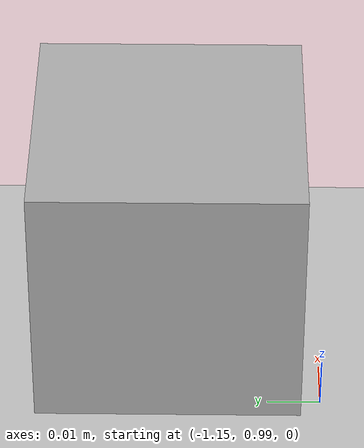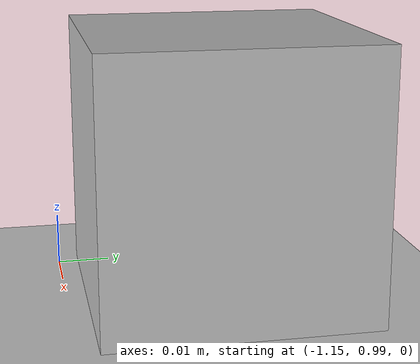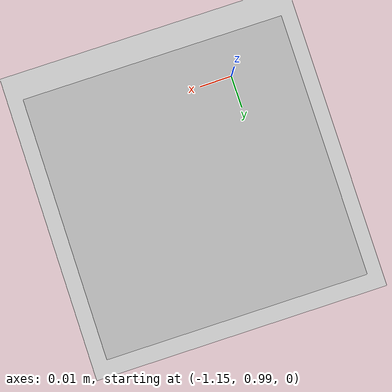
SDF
<sdf version="1.6">
 <world name="default">
  <model name="ground_plane">
   <static>1</static>
   <link name="link">
    <collision name="collision">
     <geometry><plane><normal>0 0 1</normal><size>100 100</size></plane></geometry>
     <surface><friction><ode><mu>100</mu><mu2>50</mu2></ode></friction></surface>
    </collision>
    <visual name="visual">
     <cast_shadows>0</cast_shadows>
     <geometry><plane><normal>0 0 1</normal><size>100 100</size></plane></geometry>
     <material>
      <script><uri>file://media/materials/scripts/gazebo.material</uri><name>Gazebo/Grey</name></script>
     </material>
    </visual>
   </link>
  </model>
  <light name="sun" type="directional">
   <pose>0 0 10 0 -0 0</pose>
   <diffuse>0.8 0.8 0.8 1</diffuse>
   <specular>0.1 0.1 0.1 1</specular>
   <attenuation>
    <range>1000</range>
    <constant>0.9</constant>
    <linear>0.01</linear>
    <quadratic>0.001</quadratic>
   </attenuation>
   <direction>-0.5 0.5 -1</direction>
  </light>
  <plugin name="SetupWorld" filename="libgazebo_plugins.so"/>
  <gravity>0 0 -9.8</gravity>
  <magnetic_field>6e-06 2.3e-05 -4.2e-05</magnetic_field>
  <atmosphere type="adiabatic"/>
  <physics name="default_physics" default="0" type="ode">
   <max_step_size>0.001</max_step_size>
   <real_time_factor>1</real_time_factor>
   <real_time_update_rate>1000</real_time_update_rate>
  </physics>
  <scene><ambient>0.4 0.4 0.4 1</ambient><background>0.7 0.7 0.7 1</background><shadows>1</shadows></scene>
  <spherical_coordinates>
   <surface_model>EARTH_WGS84</surface_model>
   <latitude_deg>0</latitude_deg>
   <longitude_deg>0</longitude_deg>
   <elevation>0</elevation>
   <heading_deg>0</heading_deg>
  </spherical_coordinates>
  <model name="collection_disk">
   <static>1</static>
   <link name="link">
    <visual name="visual">
     <geometry><box><size>1.016 1.016 0.001</size></box></geometry>
     <material>
      <script>
       <uri>model://collection_disk/materials/scripts</uri>
       <uri>model://collection_disk/materials/textures</uri>
       <name>collection_disk/Diffuse</name>
      </script>
     </material>
    </visual>
   </link>
   <plugin name="score_sim" filename="libgazebo_plugins_score.so">
    <scoreTopic>/collectionZone/score</scoreTopic>
    <collectionZoneSquareSize>1.016</collectionZoneSquareSize>
    <updateRate>0.2</updateRate>
   </plugin>
   <pose>0.008021 0.02585 0 0 -0 0</pose>
  </model>
  <model name="at0">
   <static>0</static>
   <link name="link">
    <inertial>
     <mass>0.01</mass>
     <inertia><ixx>4e-05</ixx><ixy>0</ixy><ixz>0</ixz><iyy>4e-05</iyy><iyz>0</iyz><izz>4e-05</izz></inertia>
    </inertial>
    <visual name="visual">
     <geometry><box><size>0.05 0.05 0.05</size></box></geometry>
     <material>
      <script>
       <uri>model://at0/materials/scripts</uri>
       <uri>model://at0/materials/textures</uri>
       <name>at0/Diffuse</name>
      </script>
     </material>
    </visual>
    <collision name="collision">
     <geometry><box><size>0.05 0.05 0.05</size></box></geometry>
     <surface><friction><ode><mu>0.8</mu><mu2>0.7</mu2></ode></friction></surface>
    </collision>
   </link>
   <pose>-1.12874 1.0188 0.025 0 -0 0</pose>
  </model>
 </world>
</sdf>
